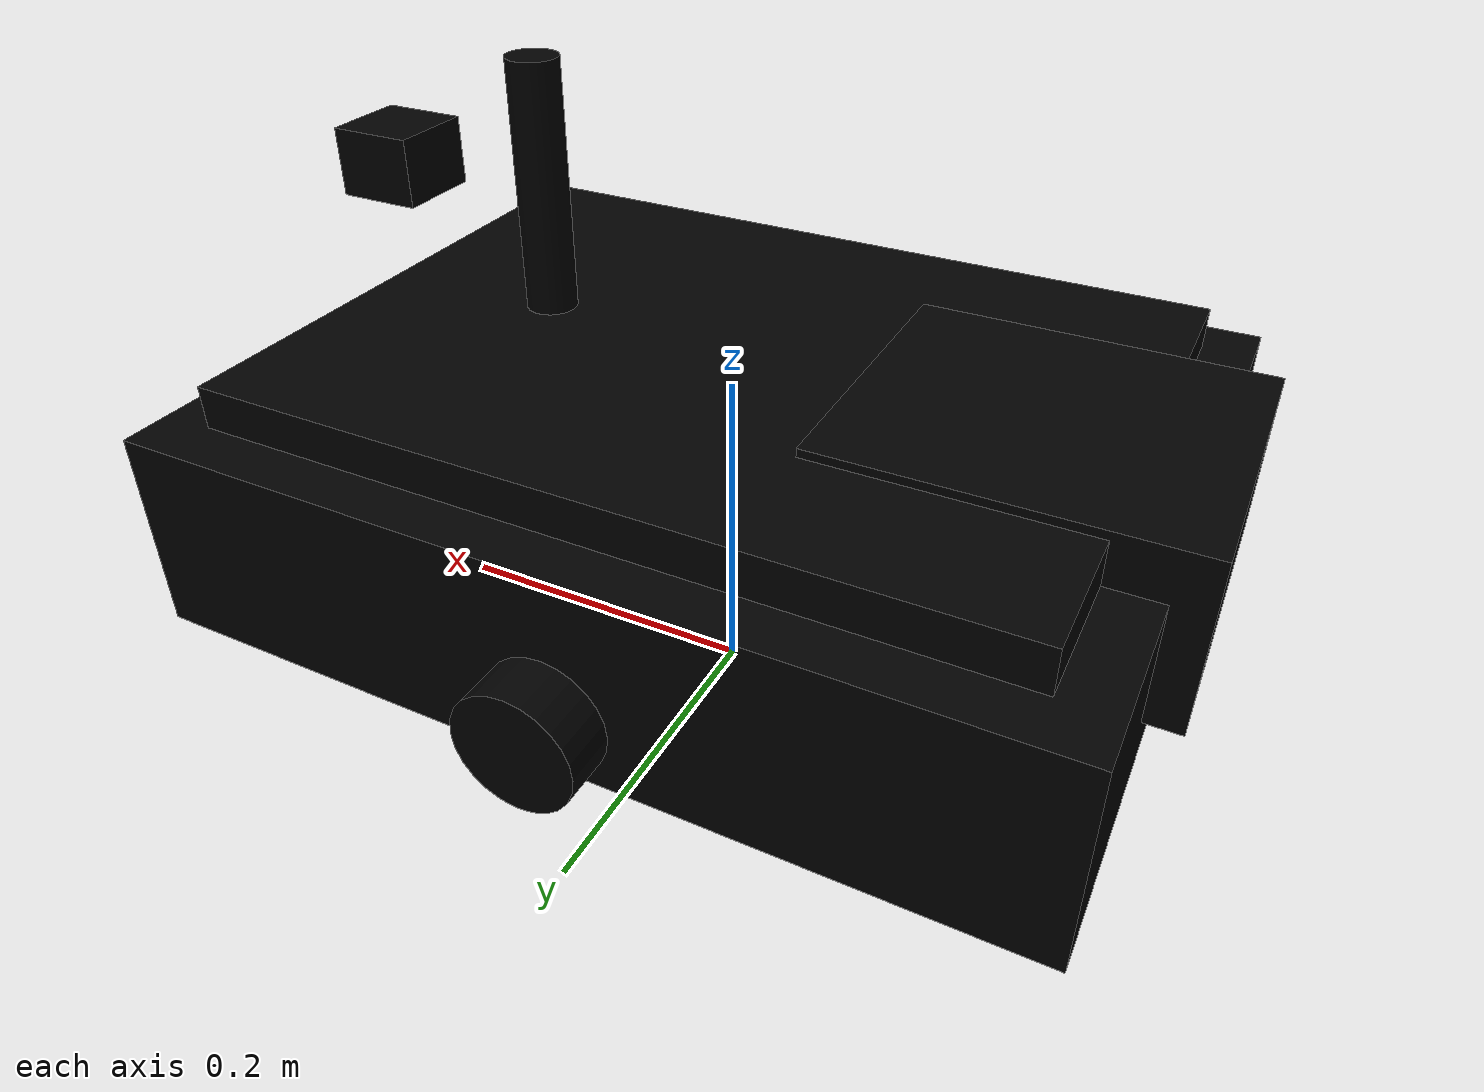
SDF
<?xml version="1.0"?>
<sdf version="1.9">
  <model name="industrial_black_bot">
    <static>false</static>
    <pose>0 0 0.08 0 0 0</pose>

    <!-- ===========================
         MATERIAL (FULL BLACK)
         =========================== -->
    <!-- NOTE: Gazebo Sim respects material colors in ambient/diffuse -->
    <!-- We'll reuse same black material on all visuals -->

    <!-- ===========================
         BASE CHASSIS
         =========================== -->
    <link name="base_link">
      <inertial>
        <mass>18.0</mass>
        <inertia>
          <ixx>0.55</ixx>
          <iyy>0.55</iyy>
          <izz>0.75</izz>
        </inertia>
      </inertial>

      <!-- Collision: simple, stable box -->
      <collision name="base_collision">
        <pose>0 0 0.06 0 0 0</pose>
        <geometry>
          <box><size>0.52 0.40 0.12</size></box>
        </geometry>
      </collision>

      <!-- Visual: industrial chassis (black) -->
      <visual name="base_visual">
        <pose>0 0 0.06 0 0 0</pose>
        <geometry>
          <box><size>0.52 0.40 0.12</size></box>
        </geometry>
        <material>
          <ambient>0 0 0 1</ambient>
          <diffuse>0 0 0 1</diffuse>
          <specular>0.15 0.15 0.15 1</specular>
        </material>
      </visual>

      <!-- Top deck (black) -->
      <visual name="top_deck">
        <pose>0 0 0.13 0 0 0</pose>
        <geometry>
          <box><size>0.46 0.34 0.03</size></box>
        </geometry>
        <material>
          <ambient>0 0 0 1</ambient>
          <diffuse>0 0 0 1</diffuse>
          <specular>0.12 0.12 0.12 1</specular>
        </material>
      </visual>

      <!-- Front bumper (black) -->
      <visual name="front_bumper">
        <pose>0.25 0 0.06 0 0 0</pose>
        <geometry>
          <box><size>0.04 0.36 0.06</size></box>
        </geometry>
        <material>
          <ambient>0 0 0 1</ambient>
          <diffuse>0 0 0 1</diffuse>
          <specular>0.08 0.08 0.08 1</specular>
        </material>
      </visual>

      <!-- Rear battery pack (black) -->
      <visual name="rear_pack">
        <pose>-0.18 0 0.10 0 0 0</pose>
        <geometry>
          <box><size>0.20 0.18 0.10</size></box>
        </geometry>
        <material>
          <ambient>0 0 0 1</ambient>
          <diffuse>0 0 0 1</diffuse>
          <specular>0.10 0.10 0.10 1</specular>
        </material>
      </visual>
    </link>

    <!-- ===========================
         WHEELS (DIFF DRIVE)
         =========================== -->

    <link name="left_wheel">
      <pose>0 0.215 0.035 1.5708 0 0</pose>
      <inertial>
        <mass>0.9</mass>
        <inertia>
          <ixx>0.002</ixx>
          <iyy>0.002</iyy>
          <izz>0.002</izz>
        </inertia>
      </inertial>

      <collision name="collision">
        <geometry>
          <cylinder><radius>0.035</radius><length>0.03</length></cylinder>
        </geometry>
        <surface>
          <friction>
            <ode>
              <mu>12</mu><mu2>12</mu2>
            </ode>
          </friction>
        </surface>
      </collision>

      <visual name="visual">
        <geometry>
          <cylinder><radius>0.035</radius><length>0.03</length></cylinder>
        </geometry>
        <material>
          <ambient>0 0 0 1</ambient>
          <diffuse>0 0 0 1</diffuse>
          <specular>0.05 0.05 0.05 1</specular>
        </material>
      </visual>
    </link>

    <link name="right_wheel">
      <pose>0 -0.215 0.035 1.5708 0 0</pose>
      <inertial>
        <mass>0.9</mass>
        <inertia>
          <ixx>0.002</ixx>
          <iyy>0.002</iyy>
          <izz>0.002</izz>
        </inertia>
      </inertial>

      <collision name="collision">
        <geometry>
          <cylinder><radius>0.035</radius><length>0.03</length></cylinder>
        </geometry>
        <surface>
          <friction>
            <ode>
              <mu>12</mu><mu2>12</mu2>
            </ode>
          </friction>
        </surface>
      </collision>

      <visual name="visual">
        <geometry>
          <cylinder><radius>0.035</radius><length>0.03</length></cylinder>
        </geometry>
        <material>
          <ambient>0 0 0 1</ambient>
          <diffuse>0 0 0 1</diffuse>
          <specular>0.05 0.05 0.05 1</specular>
        </material>
      </visual>
    </link>

    <!-- ===========================
         CASTER (REAR)
         =========================== -->
    <link name="caster">
      <pose>-0.22 0 0.02 0 0 0</pose>
      <collision name="collision">
        <geometry><sphere><radius>0.02</radius></sphere></geometry>
        <surface>
          <friction>
            <ode>
              <mu>2</mu><mu2>2</mu2>
            </ode>
          </friction>
        </surface>
      </collision>
      <visual name="visual">
        <geometry><sphere><radius>0.02</radius></sphere></geometry>
        <material>
          <ambient>0 0 0 1</ambient>
          <diffuse>0 0 0 1</diffuse>
        </material>
      </visual>
    </link>

    <!-- ===========================
         SENSOR MAST + CAMERA (BLACK)
         =========================== -->
    <link name="mast_link">
      <pose>0.12 0 0.18 0 0 0</pose>

      <collision name="mast_collision">
        <geometry>
          <cylinder><radius>0.015</radius><length>0.22</length></cylinder>
        </geometry>
      </collision>

      <visual name="mast_visual">
        <geometry>
          <cylinder><radius>0.015</radius><length>0.22</length></cylinder>
        </geometry>
        <material>
          <ambient>0 0 0 1</ambient>
          <diffuse>0 0 0 1</diffuse>
          <specular>0.08 0.08 0.08 1</specular>
        </material>
      </visual>
    </link>

    <link name="camera_link">
      <pose>0.22 0 0.22 0 0 0</pose>

      <visual name="camera_box">
        <geometry>
          <box><size>0.05 0.05 0.04</size></box>
        </geometry>
        <material>
          <ambient>0 0 0 1</ambient>
          <diffuse>0 0 0 1</diffuse>
          <specular>0.12 0.12 0.12 1</specular>
        </material>
      </visual>

      <sensor name="front_camera" type="camera">
        <pose>0.03 0 0 0 0 0</pose>
        <camera>
          <horizontal_fov>1.047</horizontal_fov>
          <image>
            <width>640</width>
            <height>480</height>
          </image>
          <clip>
            <near>0.05</near>
            <far>30</far>
          </clip>
        </camera>
      </sensor>
    </link>

    <!-- ===========================
         JOINTS
         =========================== -->
    <joint name="left_wheel_joint" type="revolute">
      <parent>base_link</parent>
      <child>left_wheel</child>
      <axis>
        <!-- IMPORTANT: correct rolling axis -->
        <xyz>1 0 0</xyz>
      </axis>
    </joint>

    <joint name="right_wheel_joint" type="revolute">
      <parent>base_link</parent>
      <child>right_wheel</child>
      <axis>
        <!-- IMPORTANT: correct rolling axis -->
        <xyz>1 0 0</xyz>
      </axis>
    </joint>

    <joint name="caster_joint" type="ball">
      <parent>base_link</parent>
      <child>caster</child>
    </joint>

    <joint name="mast_joint" type="fixed">
      <parent>base_link</parent>
      <child>mast_link</child>
    </joint>

    <joint name="camera_joint" type="fixed">
      <parent>mast_link</parent>
      <child>camera_link</child>
    </joint>

    <!-- ===========================
         DIFF DRIVE PLUGIN
         =========================== -->
    <plugin filename="gz-sim-diff-drive-system"
            name="gz::sim::systems::DiffDrive">
      <left_joint>left_wheel_joint</left_joint>
      <right_joint>right_wheel_joint</right_joint>

      <!-- matches 0.215 * 2 -->
      <wheel_separation>0.43</wheel_separation>
      <wheel_radius>0.035</wheel_radius>

      <topic>/cmd_vel</topic>
      <frame_id>odom</frame_id>
      <child_frame_id>base_link</child_frame_id>

      <max_linear_velocity>0.7</max_linear_velocity>
      <max_angular_velocity>2.0</max_angular_velocity>
      <update_rate>50</update_rate>
    </plugin>

  </model>
</sdf>
